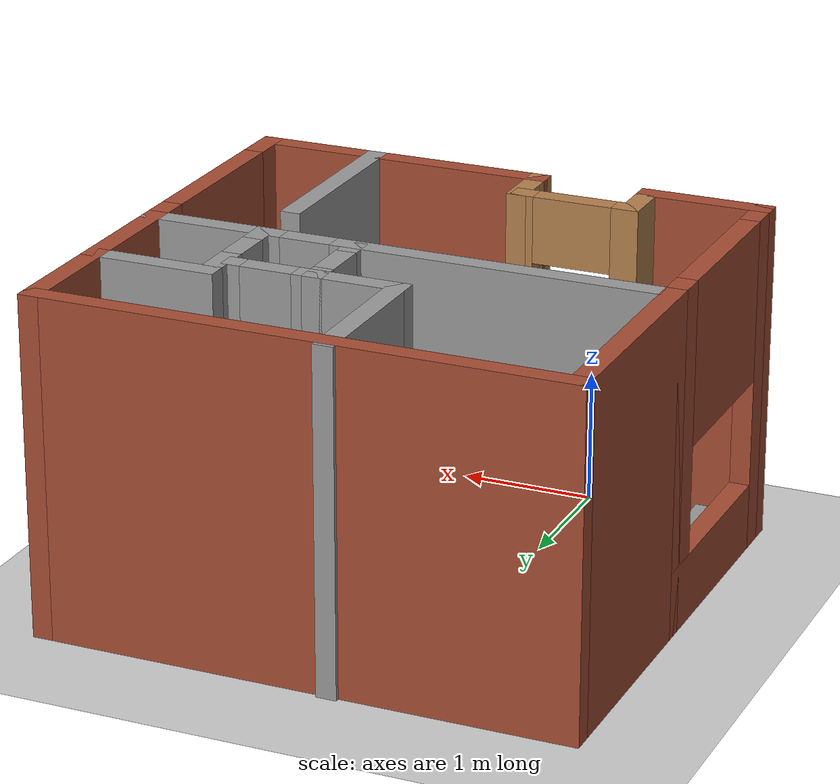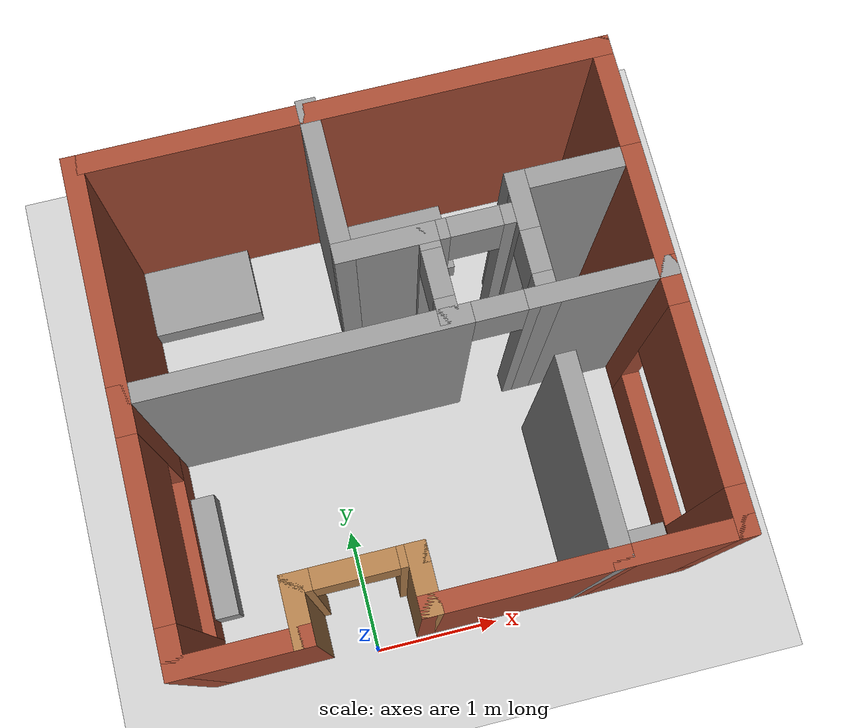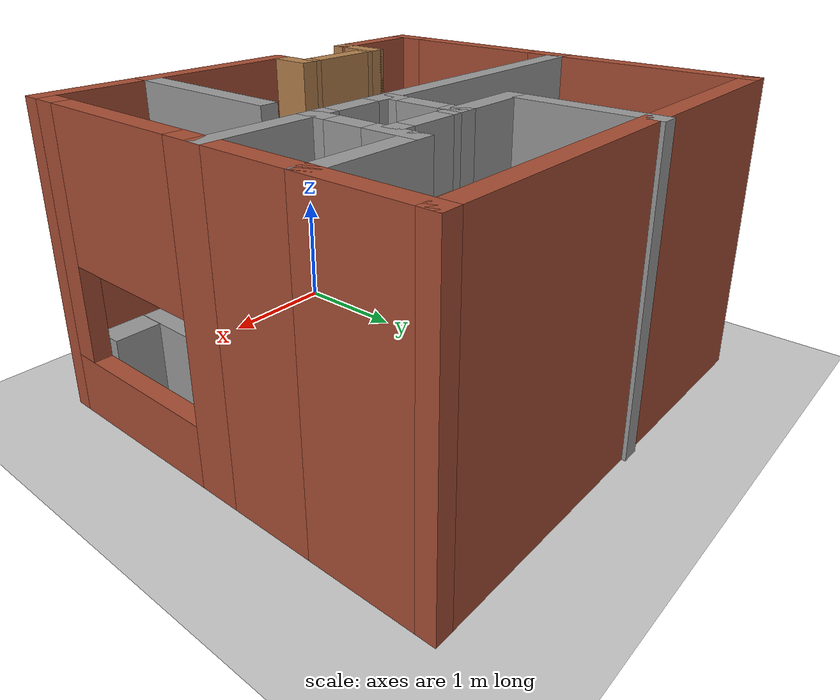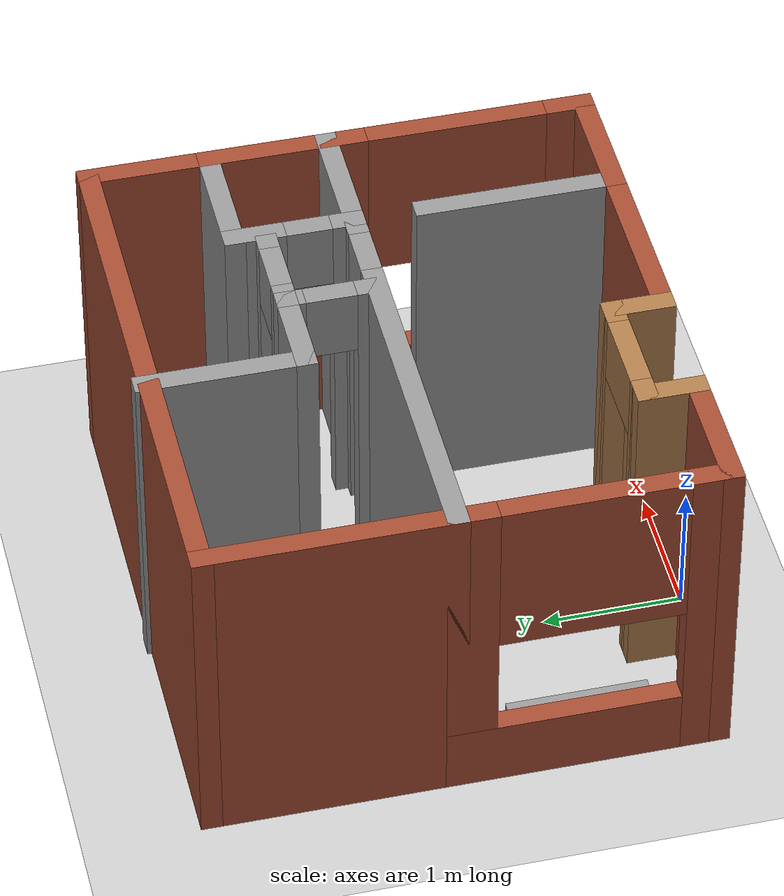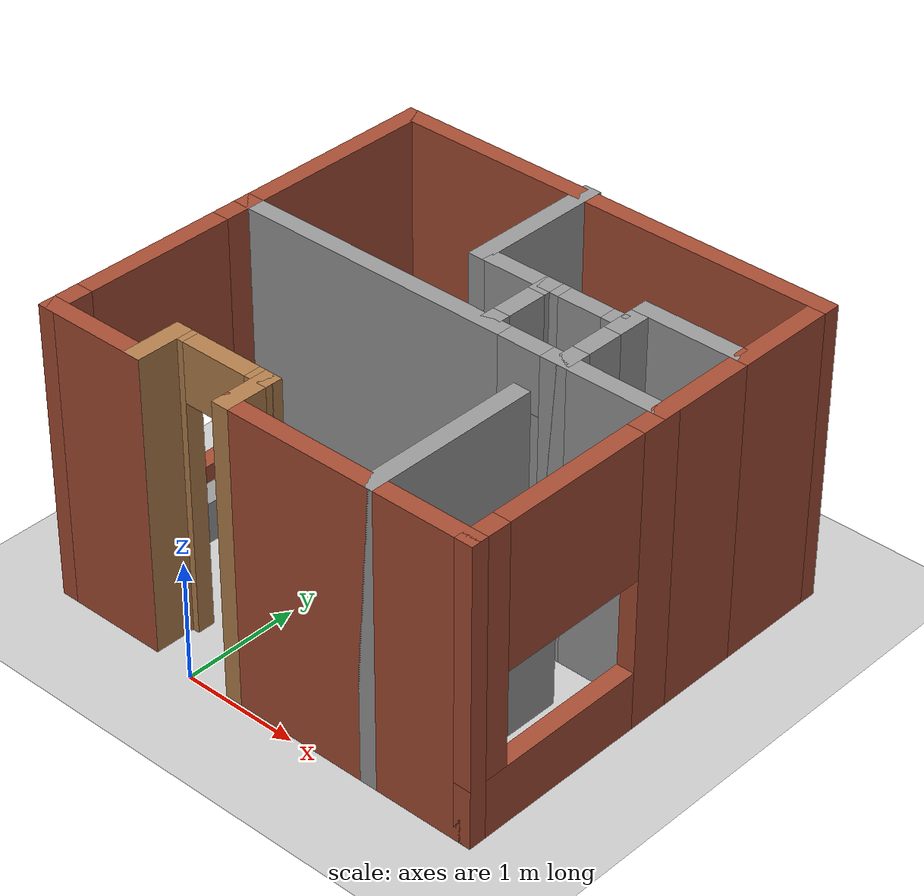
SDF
<sdf version="1.6">
 <world name="default">
  <light name="sun" type="directional">
   <pose>0 0 10 0 -0 0</pose>
   <diffuse>0.8 0.8 0.8 1</diffuse>
   <specular>0.2 0.2 0.2 1</specular>
   <attenuation>
    <range>1000</range>
    <constant>0.9</constant>
    <linear>0.01</linear>
    <quadratic>0.001</quadratic>
   </attenuation>
   <direction>-0.5 0.1 -0.9</direction>
  </light>
  <model name="ground_plane">
   <static>1</static>
   <link name="link">
    <collision name="collision">
     <geometry><plane><normal>0 0 1</normal><size>100 100</size></plane></geometry>
     <surface>
      <contact><collide_bitmask>65535</collide_bitmask></contact>
      <friction><ode><mu>100</mu><mu2>50</mu2></ode></friction>
     </surface>
    </collision>
    <visual name="visual">
     <cast_shadows>0</cast_shadows>
     <geometry><plane><normal>0 0 1</normal><size>100 100</size></plane></geometry>
     <material>
      <script><uri>file://media/materials/scripts/gazebo.material</uri><name>Gazebo/Grey</name></script>
     </material>
    </visual>
   </link>
  </model>
  <gravity>0 0 -9.8</gravity>
  <magnetic_field>6e-06 2.3e-05 -4.2e-05</magnetic_field>
  <atmosphere type="adiabatic"/>
  <physics name="default_physics" default="0" type="ode">
   <max_step_size>0.001</max_step_size>
   <real_time_factor>1</real_time_factor>
   <real_time_update_rate>1000</real_time_update_rate>
  </physics>
  <scene><ambient>0.4 0.4 0.4 1</ambient><background>0.7 0.7 0.7 1</background><shadows>1</shadows></scene>
  <audio><device>default</device></audio>
  <spherical_coordinates>
   <surface_model>EARTH_WGS84</surface_model>
   <latitude_deg>0</latitude_deg>
   <longitude_deg>0</longitude_deg>
   <elevation>0</elevation>
   <heading_deg>0</heading_deg>
  </spherical_coordinates>
  <model name="world_house">
   <pose>0.631154 1.89687 0 0 -0 0</pose>
   <link name="Wall_0">
    <collision name="Wall_0_Collision">
     <geometry><box><size>1 0.15 2.5</size></box></geometry>
     <pose>0 0 1.25 0 -0 0</pose>
    </collision>
    <visual name="Wall_0_Visual">
     <pose>0 0 1.25 0 -0 0</pose>
     <geometry><box><size>1 0.15 2.5</size></box></geometry>
     <material>
      <script><uri>file://media/materials/scripts/gazebo.material</uri><name>Gazebo/Bricks</name></script>
      <ambient>1 1 1 1</ambient>
     </material>
     <meta><layer>0</layer></meta>
    </visual>
    <pose>-1.5 -1.79051 0 0 -0 3.14159</pose>
   </link>
   <link name="Wall_1">
    <pose>-1.925 -0.865512 0 0 -0 1.5708</pose>
    <visual name="Wall_1_Visual_0">
     <pose>-0.8225 0 1.25 0 -0 0</pose>
     <geometry><box><size>0.355 0.15 2.5</size></box></geometry>
     <material>
      <script><uri>file://media/materials/scripts/gazebo.material</uri><name>Gazebo/Bricks</name></script>
      <ambient>1 1 1 1</ambient>
     </material>
     <meta><layer>0</layer></meta>
    </visual>
    <collision name="Wall_1_Collision_0">
     <geometry><box><size>0.355 0.15 2.5</size></box></geometry>
     <pose>-0.8225 0 1.25 0 -0 0</pose>
    </collision>
    <visual name="Wall_1_Visual_1">
     <pose>0.1775 0 0.25 0 -0 0</pose>
     <geometry><box><size>1.645 0.15 0.5</size></box></geometry>
     <material>
      <script><uri>file://media/materials/scripts/gazebo.material</uri><name>Gazebo/Bricks</name></script>
      <ambient>1 1 1 1</ambient>
     </material>
     <meta><layer>0</layer></meta>
    </visual>
    <collision name="Wall_1_Collision_1">
     <geometry><box><size>1.645 0.15 0.5</size></box></geometry>
     <pose>0.1775 0 0.25 0 -0 0</pose>
    </collision>
    <visual name="Wall_1_Visual_2">
     <pose>0.8225 0 1.5 0 -0 0</pose>
     <geometry><box><size>0.355 0.15 2</size></box></geometry>
     <material>
      <script><uri>file://media/materials/scripts/gazebo.material</uri><name>Gazebo/Bricks</name></script>
      <ambient>1 1 1 1</ambient>
     </material>
     <meta><layer>0</layer></meta>
    </visual>
    <collision name="Wall_1_Collision_2">
     <geometry><box><size>0.355 0.15 2</size></box></geometry>
     <pose>0.8225 0 1.5 0 -0 0</pose>
    </collision>
    <visual name="Wall_1_Visual_3">
     <pose>0 0 1.9 0 -0 0</pose>
     <geometry><box><size>1.29 0.15 1.2</size></box></geometry>
     <material>
      <script><uri>file://media/materials/scripts/gazebo.material</uri><name>Gazebo/Bricks</name></script>
      <ambient>1 1 1 1</ambient>
     </material>
     <meta><layer>0</layer></meta>
    </visual>
    <collision name="Wall_1_Collision_3">
     <geometry><box><size>1.29 0.15 1.2</size></box></geometry>
     <pose>0 0 1.9 0 -0 0</pose>
    </collision>
   </link>
   <link name="Wall_10">
    <collision name="Wall_10_Collision">
     <geometry><box><size>1.45 0.15 2.5</size></box></geometry>
     <pose>0 0 1.25 0 -0 0</pose>
    </collision>
    <visual name="Wall_10_Visual">
     <pose>0 0 1.25 0 -0 0</pose>
     <geometry><box><size>1.45 0.15 2.5</size></box></geometry>
     <material>
      <script><uri>file://media/materials/scripts/gazebo.material</uri><name>Gazebo/Bricks</name></script>
      <ambient>1 1 1 1</ambient>
     </material>
     <meta><layer>0</layer></meta>
    </visual>
    <pose>0.425 -1.79051 0 0 -0 0</pose>
   </link>
   <link name="Wall_12">
    <collision name="Wall_12_Collision">
     <geometry><box><size>1 0.15 2.5</size></box></geometry>
     <pose>0 0 1.25 0 -0 0</pose>
    </collision>
    <visual name="Wall_12_Visual">
     <pose>0 0 1.25 0 -0 0</pose>
     <geometry><box><size>1 0.15 2.5</size></box></geometry>
     <material>
      <script><uri>file://media/materials/scripts/gazebo.material</uri><name>Gazebo/Bricks</name></script>
      <ambient>1 1 1 1</ambient>
     </material>
     <meta><layer>0</layer></meta>
    </visual>
    <pose>1.925 0.484488 0 0 -0 1.5708</pose>
   </link>
   <link name="Wall_13">
    <collision name="Wall_13_Collision">
     <geometry><box><size>1 0.15 2.5</size></box></geometry>
     <pose>0 0 1.25 0 -0 0</pose>
    </collision>
    <visual name="Wall_13_Visual">
     <pose>0 0 1.25 0 -0 0</pose>
     <geometry><box><size>1 0.15 2.5</size></box></geometry>
     <material>
      <script><uri>file://media/materials/scripts/gazebo.material</uri><name>Gazebo/Grey</name></script>
      <ambient>1 1 1 1</ambient>
     </material>
     <meta><layer>0</layer></meta>
    </visual>
    <pose>1.5 0.909488 0 0 -0 3.14159</pose>
   </link>
   <link name="Wall_14">
    <pose>1.075 0.484488 0 0 -0 -1.5708</pose>
    <visual name="Wall_14_Visual_0">
     <pose>-0.281871 0 1.25 0 -0 0</pose>
     <geometry><box><size>0.436257 0.15 2.5</size></box></geometry>
     <material>
      <script><uri>file://media/materials/scripts/gazebo.material</uri><name>Gazebo/Grey</name></script>
      <ambient>1 1 1 1</ambient>
     </material>
     <meta><layer>0</layer></meta>
    </visual>
    <collision name="Wall_14_Collision_0">
     <geometry><box><size>0.436257 0.15 2.5</size></box></geometry>
     <pose>-0.281871 0 1.25 0 -0 0</pose>
    </collision>
    <visual name="Wall_14_Visual_1">
     <pose>0.379543 0 1.25 0 -0 0</pose>
     <geometry><box><size>0.240915 0.15 2.5</size></box></geometry>
     <material>
      <script><uri>file://media/materials/scripts/gazebo.material</uri><name>Gazebo/Grey</name></script>
      <ambient>1 1 1 1</ambient>
     </material>
     <meta><layer>0</layer></meta>
    </visual>
    <collision name="Wall_14_Collision_1">
     <geometry><box><size>0.240915 0.15 2.5</size></box></geometry>
     <pose>0.379543 0 1.25 0 -0 0</pose>
    </collision>
    <visual name="Wall_14_Visual_2">
     <pose>0.097671 0 2.25 0 -0 0</pose>
     <geometry><box><size>0.322828 0.15 0.5</size></box></geometry>
     <material>
      <script><uri>file://media/materials/scripts/gazebo.material</uri><name>Gazebo/Grey</name></script>
      <ambient>1 1 1 1</ambient>
     </material>
     <meta><layer>0</layer></meta>
    </visual>
    <collision name="Wall_14_Collision_2">
     <geometry><box><size>0.322828 0.15 0.5</size></box></geometry>
     <pose>0.097671 0 2.25 0 -0 0</pose>
    </collision>
   </link>
   <link name="Wall_16">
    <collision name="Wall_16_Collision">
     <geometry><box><size>1 0.15 2.5</size></box></geometry>
     <pose>0 0 1.25 0 -0 0</pose>
    </collision>
    <visual name="Wall_16_Visual">
     <pose>0 0 1.25 0 -0 0</pose>
     <geometry><box><size>1 0.15 2.5</size></box></geometry>
     <material>
      <script><uri>file://media/materials/scripts/gazebo.material</uri><name>Gazebo/Bricks</name></script>
      <ambient>1 1 1 1</ambient>
     </material>
     <meta><layer>0</layer></meta>
    </visual>
    <pose>1.925 1.33449 0 0 -0 1.5708</pose>
   </link>
   <link name="Wall_17">
    <collision name="Wall_17_Collision">
     <geometry><box><size>4 0.15 2.5</size></box></geometry>
     <pose>0 0 1.25 0 -0 0</pose>
    </collision>
    <visual name="Wall_17_Visual">
     <pose>0 0 1.25 0 -0 0</pose>
     <geometry><box><size>4 0.15 2.5</size></box></geometry>
     <material>
      <script><uri>file://media/materials/scripts/gazebo.material</uri><name>Gazebo/Bricks</name></script>
      <ambient>1 1 1 1</ambient>
     </material>
     <meta><layer>0</layer></meta>
    </visual>
    <pose>0 1.75949 0 0 -0 3.14159</pose>
   </link>
   <link name="Wall_18">
    <collision name="Wall_18_Collision">
     <geometry><box><size>1.85 0.15 2.5</size></box></geometry>
     <pose>0 0 1.25 0 -0 0</pose>
    </collision>
    <visual name="Wall_18_Visual">
     <pose>0 0 1.25 0 -0 0</pose>
     <geometry><box><size>1.85 0.15 2.5</size></box></geometry>
     <material>
      <script><uri>file://media/materials/scripts/gazebo.material</uri><name>Gazebo/Bricks</name></script>
      <ambient>1 1 1 1</ambient>
     </material>
     <meta><layer>0</layer></meta>
    </visual>
    <pose>-1.925 0.909488 0 0 -0 -1.5708</pose>
   </link>
   <link name="Wall_20">
    <pose>0.374443 0.390512 0 0 -0 1.5708</pose>
    <visual name="Wall_20_Visual_0">
     <pose>-0.278127 0 1.25 0 -0 0</pose>
     <geometry><box><size>0.193745 0.15 2.5</size></box></geometry>
     <material>
      <script><uri>file://media/materials/scripts/gazebo.material</uri><name>Gazebo/Grey</name></script>
      <ambient>1 1 1 1</ambient>
     </material>
     <meta><layer>0</layer></meta>
    </visual>
    <collision name="Wall_20_Collision_0">
     <geometry><box><size>0.193745 0.15 2.5</size></box></geometry>
     <pose>-0.278127 0 1.25 0 -0 0</pose>
    </collision>
    <visual name="Wall_20_Visual_1">
     <pose>0.275777 0 1.25 0 -0 0</pose>
     <geometry><box><size>0.198447 0.15 2.5</size></box></geometry>
     <material>
      <script><uri>file://media/materials/scripts/gazebo.material</uri><name>Gazebo/Grey</name></script>
      <ambient>1 1 1 1</ambient>
     </material>
     <meta><layer>0</layer></meta>
    </visual>
    <collision name="Wall_20_Collision_1">
     <geometry><box><size>0.198447 0.15 2.5</size></box></geometry>
     <pose>0.275777 0 1.25 0 -0 0</pose>
    </collision>
    <visual name="Wall_20_Visual_2">
     <pose>-0.002351 0 2.25 0 -0 0</pose>
     <geometry><box><size>0.357808 0.15 0.5</size></box></geometry>
     <material>
      <script><uri>file://media/materials/scripts/gazebo.material</uri><name>Gazebo/Grey</name></script>
      <ambient>1 1 1 1</ambient>
     </material>
     <meta><layer>0</layer></meta>
    </visual>
    <collision name="Wall_20_Collision_2">
     <geometry><box><size>0.357808 0.15 0.5</size></box></geometry>
     <pose>-0.002351 0 2.25 0 -0 0</pose>
    </collision>
   </link>
   <link name="Wall_21">
    <collision name="Wall_21_Collision">
     <geometry><box><size>0.75 0.15 2.5</size></box></geometry>
     <pose>0 0 1.25 0 -0 0</pose>
    </collision>
    <visual name="Wall_21_Visual">
     <pose>0 0 1.25 0 -0 0</pose>
     <geometry><box><size>0.75 0.15 2.5</size></box></geometry>
     <material>
      <script><uri>file://media/materials/scripts/gazebo.material</uri><name>Gazebo/Grey</name></script>
      <ambient>1 1 1 1</ambient>
     </material>
     <meta><layer>0</layer></meta>
    </visual>
    <pose>0.074443 0.690512 0 0 -0 3.14159</pose>
   </link>
   <link name="Wall_22">
    <collision name="Wall_22_Collision">
     <geometry><box><size>1.25 0.15 2.5</size></box></geometry>
     <pose>0 0 1.25 0 -0 0</pose>
    </collision>
    <visual name="Wall_22_Visual">
     <pose>0 0 1.25 0 -0 0</pose>
     <geometry><box><size>1.25 0.15 2.5</size></box></geometry>
     <material>
      <script><uri>file://media/materials/scripts/gazebo.material</uri><name>Gazebo/Grey</name></script>
      <ambient>1 1 1 1</ambient>
     </material>
     <meta><layer>0</layer></meta>
    </visual>
    <pose>-0.225557 1.24051 0 0 -0 1.5708</pose>
   </link>
   <link name="Wall_24">
    <pose>0.674443 0.690512 0 0 -0 0</pose>
    <visual name="Wall_24_Visual_0">
     <pose>-0.261861 0 1.25 0 -0 0</pose>
     <geometry><box><size>0.226279 0.15 2.5</size></box></geometry>
     <material>
      <script><uri>file://media/materials/scripts/gazebo.material</uri><name>Gazebo/Grey</name></script>
      <ambient>1 1 1 1</ambient>
     </material>
     <meta><layer>0</layer></meta>
    </visual>
    <collision name="Wall_24_Collision_0">
     <geometry><box><size>0.226279 0.15 2.5</size></box></geometry>
     <pose>-0.261861 0 1.25 0 -0 0</pose>
    </collision>
    <visual name="Wall_24_Visual_1">
     <pose>0.305161 0 1.25 0 -0 0</pose>
     <geometry><box><size>0.139678 0.15 2.5</size></box></geometry>
     <material>
      <script><uri>file://media/materials/scripts/gazebo.material</uri><name>Gazebo/Grey</name></script>
      <ambient>1 1 1 1</ambient>
     </material>
     <meta><layer>0</layer></meta>
    </visual>
    <collision name="Wall_24_Collision_1">
     <geometry><box><size>0.139678 0.15 2.5</size></box></geometry>
     <pose>0.305161 0 1.25 0 -0 0</pose>
    </collision>
    <visual name="Wall_24_Visual_2">
     <pose>0.0433 0 2.25 0 -0 0</pose>
     <geometry><box><size>0.384043 0.15 0.5</size></box></geometry>
     <material>
      <script><uri>file://media/materials/scripts/gazebo.material</uri><name>Gazebo/Grey</name></script>
      <ambient>1 1 1 1</ambient>
     </material>
     <meta><layer>0</layer></meta>
    </visual>
    <collision name="Wall_24_Collision_2">
     <geometry><box><size>0.384043 0.15 0.5</size></box></geometry>
     <pose>0.0433 0 2.25 0 -0 0</pose>
    </collision>
   </link>
   <link name="Wall_29">
    <pose>0 0.059488 0 0 -0 0</pose>
    <visual name="Wall_29_Visual_0">
     <pose>-0.729801 0 1.25 0 -0 0</pose>
     <geometry><box><size>2.5404 0.15 2.5</size></box></geometry>
     <material>
      <script><uri>file://media/materials/scripts/gazebo.material</uri><name>Gazebo/Grey</name></script>
      <ambient>1 1 1 1</ambient>
     </material>
     <meta><layer>0</layer></meta>
    </visual>
    <collision name="Wall_29_Collision_0">
     <geometry><box><size>2.5404 0.15 2.5</size></box></geometry>
     <pose>-0.729801 0 1.25 0 -0 0</pose>
    </collision>
    <visual name="Wall_29_Visual_1">
     <pose>1.45872 0 1.25 0 -0 0</pose>
     <geometry><box><size>1.08255 0.15 2.5</size></box></geometry>
     <material>
      <script><uri>file://media/materials/scripts/gazebo.material</uri><name>Gazebo/Grey</name></script>
      <ambient>1 1 1 1</ambient>
     </material>
     <meta><layer>0</layer></meta>
    </visual>
    <collision name="Wall_29_Collision_1">
     <geometry><box><size>1.08255 0.15 2.5</size></box></geometry>
     <pose>1.45872 0 1.25 0 -0 0</pose>
    </collision>
    <visual name="Wall_29_Visual_2">
     <pose>0.728922 0 2.25 0 -0 0</pose>
     <geometry><box><size>0.377047 0.15 0.5</size></box></geometry>
     <material>
      <script><uri>file://media/materials/scripts/gazebo.material</uri><name>Gazebo/Grey</name></script>
      <ambient>1 1 1 1</ambient>
     </material>
     <meta><layer>0</layer></meta>
    </visual>
    <collision name="Wall_29_Collision_2">
     <geometry><box><size>0.377047 0.15 0.5</size></box></geometry>
     <pose>0.728922 0 2.25 0 -0 0</pose>
    </collision>
   </link>
   <link name="Wall_3">
    <pose>1.925 -0.865512 0 0 -0 -1.5708</pose>
    <visual name="Wall_3_Visual_0">
     <pose>-0.8225 0 1.25 0 -0 0</pose>
     <geometry><box><size>0.355 0.15 2.5</size></box></geometry>
     <material>
      <script><uri>file://media/materials/scripts/gazebo.material</uri><name>Gazebo/Bricks</name></script>
      <ambient>1 1 1 1</ambient>
     </material>
     <meta><layer>0</layer></meta>
    </visual>
    <collision name="Wall_3_Collision_0">
     <geometry><box><size>0.355 0.15 2.5</size></box></geometry>
     <pose>-0.8225 0 1.25 0 -0 0</pose>
    </collision>
    <visual name="Wall_3_Visual_1">
     <pose>0.1775 0 0.25 0 -0 0</pose>
     <geometry><box><size>1.645 0.15 0.5</size></box></geometry>
     <material>
      <script><uri>file://media/materials/scripts/gazebo.material</uri><name>Gazebo/Bricks</name></script>
      <ambient>1 1 1 1</ambient>
     </material>
     <meta><layer>0</layer></meta>
    </visual>
    <collision name="Wall_3_Collision_1">
     <geometry><box><size>1.645 0.15 0.5</size></box></geometry>
     <pose>0.1775 0 0.25 0 -0 0</pose>
    </collision>
    <visual name="Wall_3_Visual_2">
     <pose>0.8225 0 1.5 0 -0 0</pose>
     <geometry><box><size>0.355 0.15 2</size></box></geometry>
     <material>
      <script><uri>file://media/materials/scripts/gazebo.material</uri><name>Gazebo/Bricks</name></script>
      <ambient>1 1 1 1</ambient>
     </material>
     <meta><layer>0</layer></meta>
    </visual>
    <collision name="Wall_3_Collision_2">
     <geometry><box><size>0.355 0.15 2</size></box></geometry>
     <pose>0.8225 0 1.5 0 -0 0</pose>
    </collision>
    <visual name="Wall_3_Visual_3">
     <pose>0 0 1.9 0 -0 0</pose>
     <geometry><box><size>1.29 0.15 1.2</size></box></geometry>
     <material>
      <script><uri>file://media/materials/scripts/gazebo.material</uri><name>Gazebo/Bricks</name></script>
      <ambient>1 1 1 1</ambient>
     </material>
     <meta><layer>0</layer></meta>
    </visual>
    <collision name="Wall_3_Collision_3">
     <geometry><box><size>1.29 0.15 1.2</size></box></geometry>
     <pose>0 0 1.9 0 -0 0</pose>
    </collision>
   </link>
   <link name="Wall_4">
    <collision name="Wall_4_Collision">
     <geometry><box><size>1 0.15 2.5</size></box></geometry>
     <pose>0 0 1.25 0 -0 0</pose>
    </collision>
    <visual name="Wall_4_Visual">
     <pose>0 0 1.25 0 -0 0</pose>
     <geometry><box><size>1 0.15 2.5</size></box></geometry>
     <material>
      <script><uri>file://media/materials/scripts/gazebo.material</uri><name>Gazebo/Bricks</name></script>
      <ambient>1 1 1 1</ambient>
     </material>
     <meta><layer>0</layer></meta>
    </visual>
    <pose>1.5 -1.79051 0 0 -0 3.14159</pose>
   </link>
   <link name="Wall_5">
    <collision name="Wall_5_Collision">
     <geometry><box><size>1.5 0.15 2.5</size></box></geometry>
     <pose>0 0 1.25 0 -0 0</pose>
    </collision>
    <visual name="Wall_5_Visual">
     <pose>0 0 1.25 0 -0 0</pose>
     <geometry><box><size>1.5 0.15 2.5</size></box></geometry>
     <material>
      <script><uri>file://media/materials/scripts/gazebo.material</uri><name>Gazebo/Grey</name></script>
      <ambient>1 1 1 1</ambient>
     </material>
     <meta><layer>0</layer></meta>
    </visual>
    <pose>1.075 -1.11551 0 0 -0 1.5708</pose>
   </link>
   <link name="Wall_7">
    <collision name="Wall_7_Collision">
     <geometry><box><size>0.5 0.15 2.5</size></box></geometry>
     <pose>0 0 1.25 0 -0 0</pose>
    </collision>
    <visual name="Wall_7_Visual">
     <pose>0 0 1.25 0 -0 0</pose>
     <geometry><box><size>0.5 0.15 2.5</size></box></geometry>
     <material>
      <script><uri>file://media/materials/scripts/gazebo.material</uri><name>Gazebo/Wood</name></script>
      <ambient>1 1 1 1</ambient>
     </material>
     <meta><layer>0</layer></meta>
    </visual>
    <pose>-1.075 -1.61551 0 0 -0 1.5708</pose>
   </link>
   <link name="Wall_8">
    <pose>-0.65 -1.44051 0 0 -0 0</pose>
    <visual name="Wall_8_Visual_0">
     <pose>-0.3975 0 1.25 0 -0 0</pose>
     <geometry><box><size>0.205 0.15 2.5</size></box></geometry>
     <material>
      <script><uri>file://media/materials/scripts/gazebo.material</uri><name>Gazebo/Wood</name></script>
      <ambient>1 1 1 1</ambient>
     </material>
     <meta><layer>0</layer></meta>
    </visual>
    <collision name="Wall_8_Collision_0">
     <geometry><box><size>0.205 0.15 2.5</size></box></geometry>
     <pose>-0.3975 0 1.25 0 -0 0</pose>
    </collision>
    <visual name="Wall_8_Visual_1">
     <pose>0.3975 0 1.25 0 -0 0</pose>
     <geometry><box><size>0.205 0.15 2.5</size></box></geometry>
     <material>
      <script><uri>file://media/materials/scripts/gazebo.material</uri><name>Gazebo/Wood</name></script>
      <ambient>1 1 1 1</ambient>
     </material>
     <meta><layer>0</layer></meta>
    </visual>
    <collision name="Wall_8_Collision_1">
     <geometry><box><size>0.205 0.15 2.5</size></box></geometry>
     <pose>0.3975 0 1.25 0 -0 0</pose>
    </collision>
    <visual name="Wall_8_Visual_2">
     <pose>-0 0 2.25 0 -0 0</pose>
     <geometry><box><size>0.59 0.15 0.5</size></box></geometry>
     <material>
      <script><uri>file://media/materials/scripts/gazebo.material</uri><name>Gazebo/Wood</name></script>
      <ambient>1 1 1 1</ambient>
     </material>
     <meta><layer>0</layer></meta>
    </visual>
    <collision name="Wall_8_Collision_2">
     <geometry><box><size>0.59 0.15 0.5</size></box></geometry>
     <pose>-0 0 2.25 0 -0 0</pose>
    </collision>
   </link>
   <link name="Wall_9">
    <collision name="Wall_9_Collision">
     <geometry><box><size>0.5 0.15 2.5</size></box></geometry>
     <pose>0 0 1.25 0 -0 0</pose>
    </collision>
    <visual name="Wall_9_Visual">
     <pose>0 0 1.25 0 -0 0</pose>
     <geometry><box><size>0.5 0.15 2.5</size></box></geometry>
     <material>
      <script><uri>file://media/materials/scripts/gazebo.material</uri><name>Gazebo/Wood</name></script>
      <ambient>1 1 1 1</ambient>
     </material>
     <meta><layer>0</layer></meta>
    </visual>
    <pose>-0.225 -1.61551 0 0 -0 -1.5708</pose>
   </link>
   <static>1</static>
  </model>
  <model name="unit_box">
   <pose>1.91958 0.852296 0.308596 9e-06 -0 -5e-06</pose>
   <link name="link">
    <inertial>
     <mass>1</mass>
     <inertia>
      <ixx>0.166667</ixx>
      <ixy>0</ixy>
      <ixz>0</ixz>
      <iyy>0.166667</iyy>
      <iyz>0</iyz>
      <izz>0.166667</izz>
     </inertia>
    </inertial>
    <collision name="collision"><geometry><box><size>0.276638 1.33664 0.617205</size></box></geometry></collision>
    <visual name="visual">
     <geometry><box><size>0.276638 1.33664 0.617205</size></box></geometry>
     <material>
      <script><name>Gazebo/Grey</name><uri>file://media/materials/scripts/gazebo.material</uri></script>
     </material>
    </visual>
   </link>
  </model>
  <model name="unit_box_0">
   <pose>-1.12121 1.03605 0.176286 0 3e-06 -1e-06</pose>
   <link name="link">
    <inertial>
     <mass>1</mass>
     <inertia>
      <ixx>0.166667</ixx>
      <ixy>0</ixy>
      <ixz>0</ixz>
      <iyy>0.166667</iyy>
      <iyz>0</iyz>
      <izz>0.166667</izz>
     </inertia>
    </inertial>
    <collision name="collision"><geometry><box><size>0.195255 1 0.352573</size></box></geometry></collision>
    <visual name="visual">
     <geometry><box><size>0.195255 1 0.352573</size></box></geometry>
     <material>
      <script><name>Gazebo/Grey</name><uri>file://media/materials/scripts/gazebo.material</uri></script>
     </material>
    </visual>
   </link>
  </model>
  <model name="unit_box_clone">
   <pose>2.2546 0.29858 0.308601 3e-06 -5e-06 -1.1e-05</pose>
   <link name="link">
    <inertial>
     <mass>1</mass>
     <inertia>
      <ixx>0.166667</ixx>
      <ixy>0</ixy>
      <ixz>0</ixz>
      <iyy>0.166667</iyy>
      <iyz>0</iyz>
      <izz>0.166667</izz>
     </inertia>
    </inertial>
    <collision name="collision">
     <geometry><box><size>0.386228 0.234423 0.617205</size></box></geometry>
    </collision>
    <visual name="visual">
     <geometry><box><size>0.386228 0.234423 0.617205</size></box></geometry>
     <material>
      <script><name>Gazebo/Grey</name><uri>file://media/materials/scripts/gazebo.material</uri></script>
     </material>
    </visual>
   </link>
  </model>
  <model name="unit_box_0_clone">
   <pose>-0.763183 3.29348 0.115859 0 -0 -1.9e-05</pose>
   <link name="link">
    <inertial>
     <mass>1</mass>
     <inertia>
      <ixx>0.166667</ixx>
      <ixy>0</ixy>
      <ixz>0</ixz>
      <iyy>0.166667</iyy>
      <iyz>0</iyz>
      <izz>0.166667</izz>
     </inertia>
    </inertial>
    <collision name="collision">
     <geometry><box><size>0.911306 0.575743 0.231719</size></box></geometry>
    </collision>
    <visual name="visual">
     <geometry><box><size>0.911306 0.575743 0.231719</size></box></geometry>
     <material>
      <script><name>Gazebo/Grey</name><uri>file://media/materials/scripts/gazebo.material</uri></script>
     </material>
    </visual>
   </link>
  </model>
  <model name="unit_box_0_clone_clone">
   <pose>0.949318 3.29349 0.115859 0 -0 -3e-06</pose>
   <link name="link">
    <inertial>
     <mass>1</mass>
     <inertia>
      <ixx>0.166667</ixx>
      <ixy>0</ixy>
      <ixz>0</ixz>
      <iyy>0.166667</iyy>
      <iyz>0</iyz>
      <izz>0.166667</izz>
     </inertia>
    </inertial>
    <collision name="collision">
     <geometry><box><size>0.911308 0.575743 0.231719</size></box></geometry>
    </collision>
    <visual name="visual">
     <geometry><box><size>0.911308 0.575743 0.231719</size></box></geometry>
     <material>
      <script><name>Gazebo/Grey</name><uri>file://media/materials/scripts/gazebo.material</uri></script>
     </material>
    </visual>
   </link>
  </model>
 </world>
</sdf>
